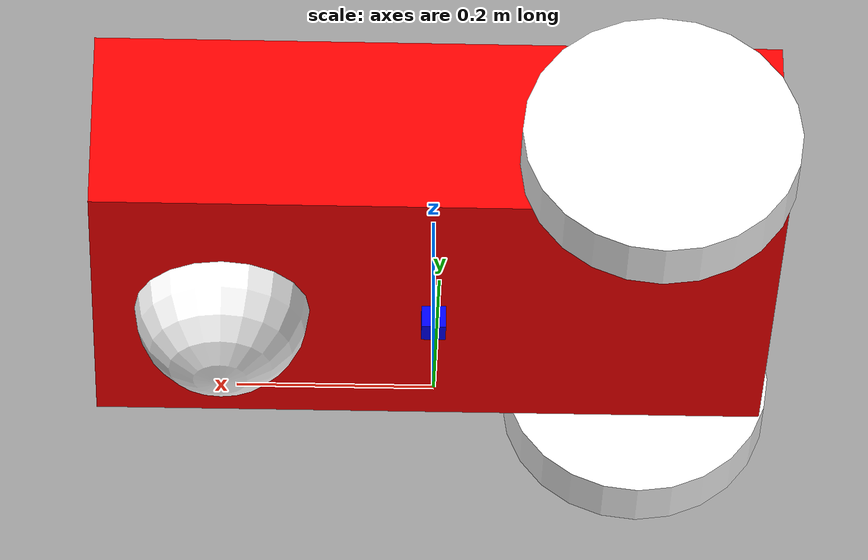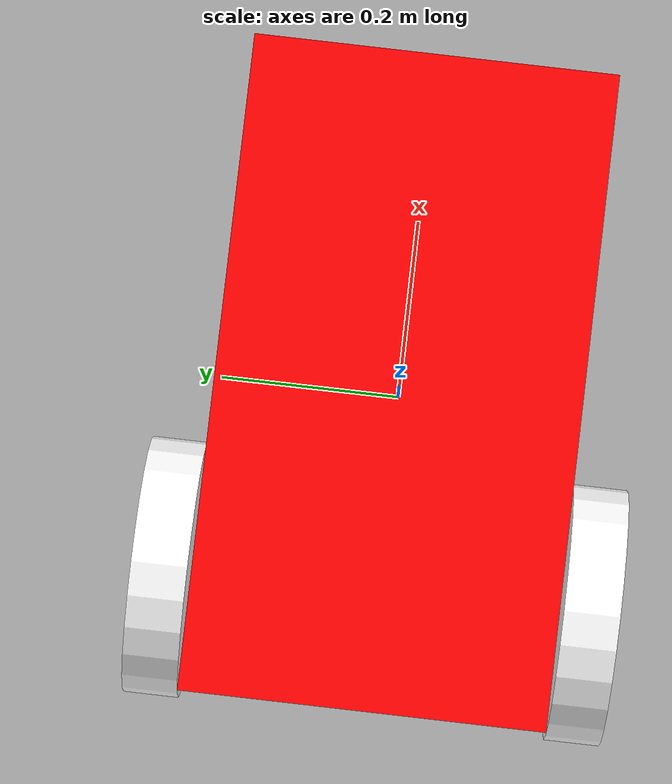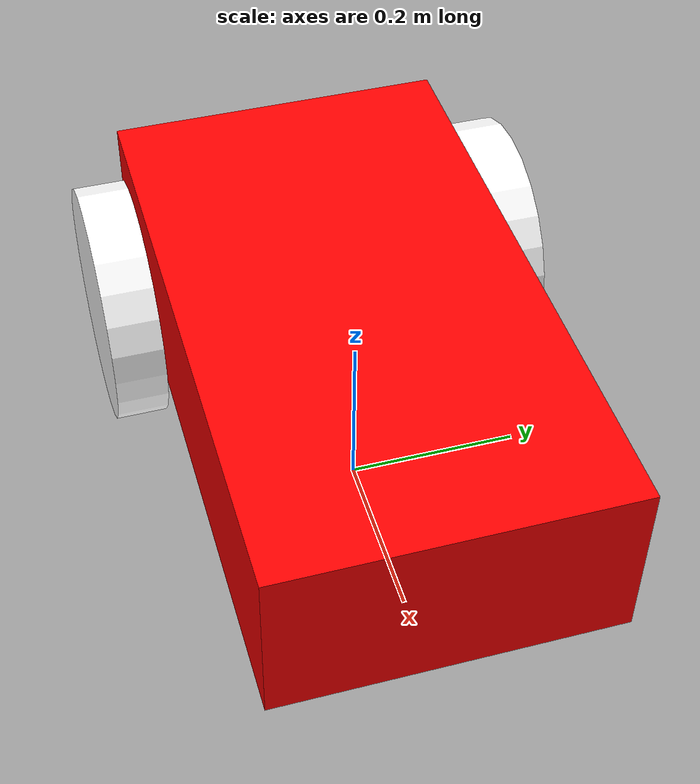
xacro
<?xml version="1.0" ?>
<robot name="isi_robot" xmlns:xacro="http://ros.org/wiki/xacro">

  <!-- ****************** ROBOT CONSTANTS *******************************  -->
  <!-- Define the size of the robot's main chassis in meters -->
  <xacro:property name="base_width" value="0.39"/>
  <xacro:property name="base_length" value="0.70"/>
  <xacro:property name="base_height" value="0.20"/>

  <!-- Define the shape of the robot's two back wheels in meters -->
  <xacro:property name="wheel_radius" value="0.14"/>
  <xacro:property name="wheel_width" value="0.06"/>

  <!-- x-axis points forward, y-axis points to left, z-axis points upwards -->
  <!-- Define the gap between the wheel and chassis along y-axis in meters -->
  <xacro:property name="wheel_ygap" value="0.035"/>

  <!-- Position the wheels along the z-axis -->
  <xacro:property name="wheel_zoff" value="0.05"/>

  <!-- Position the wheels along the x-axis -->
  <xacro:property name="wheel_xoff" value="0.221"/>

  <!-- Position the caster wheel along the x-axis -->
  <xacro:property name="caster_xoff" value="0.217"/>

  <!-- Define intertial property macros  -->
  <xacro:macro name="box_inertia" params="m w h d">
    <inertial>
      <origin xyz="0 0 0" rpy="${pi/2} 0 ${pi/2}"/>
      <mass value="${m}"/>
      <inertia ixx="${(m/12) * (h*h + d*d)}" ixy="0.0" ixz="0.0" iyy="${(m/12) * (w*w + d*d)}" iyz="0.0" izz="${(m/12) * (w*w + h*h)}"/>
    </inertial>
  </xacro:macro>

  <xacro:macro name="cylinder_inertia" params="m r h">
    <inertial>
      <origin xyz="0 0 0" rpy="${pi/2} 0 0" />
      <mass value="${m}"/>
      <inertia ixx="${(m/12) * (3*r*r + h*h)}" ixy = "0" ixz = "0" iyy="${(m/12) * (3*r*r + h*h)}" iyz = "0" izz="${(m/2) * (r*r)}"/>
    </inertial>
  </xacro:macro>

  <xacro:macro name="sphere_inertia" params="m r">
    <inertial>
      <mass value="${m}"/>
      <inertia ixx="${(2/5) * m * (r*r)}" ixy="0.0" ixz="0.0" iyy="${(2/5) * m * (r*r)}" iyz="0.0" izz="${(2/5) * m * (r*r)}"/>
    </inertial>
  </xacro:macro>

  <!-- ****************** ROBOT BASE FOOTPRINT ***************************  -->
  <!-- Define the center of the main robot chassis projected on the ground -->
  <link name="base_footprint"/>

  <!-- The base footprint of the robot is located underneath the chassis -->
  <joint name="base_joint" type="fixed">
    <parent link="base_footprint"/>
    <child link="base_link" />
    <origin xyz="0.0 0.0 ${(wheel_radius+wheel_zoff)}" rpy="0 0 0"/>
  </joint>

  <!-- ********************** ROBOT BASE *********************************  -->
  <link name="base_link">
    <visual>
      <origin xyz="0 0 0.0" rpy="0.0 0 0.0"/>
      <geometry>
        <box size="${base_length} ${base_width} ${base_height}"/>
      </geometry>
      <material name="Red">
        <color rgba="${255/255} ${0/255} ${0/255} 1.0"/>
      </material>
    </visual>

    <collision>
      <geometry>
        <box size="${base_length} ${base_width} ${base_height}"/>
      </geometry>
    </collision>

    <xacro:box_inertia m="40.0" w="${base_width}" d="${base_length}" h="${base_height}"/>

  </link>

  <!-- *********************** DRIVE WHEELS ******************************  -->

  <xacro:macro name="wheel" params="prefix x_reflect y_reflect">
    <link name="${prefix}_link">
      <visual>
        <origin xyz="0 0 0" rpy="1.5707963267949 0 0"/>
        <geometry>
            <cylinder radius="${wheel_radius}" length="${wheel_width}"/>
        </geometry>
        <material name="White">
          <color rgba="${255/255} ${255/255} ${255/255} 1.0"/>
        </material>
      </visual>

      <collision>
        <origin xyz="0 0 0" rpy="${pi/2} 0 0"/>
        <geometry>
          <cylinder radius="${wheel_radius}" length="${wheel_width}"/>
        </geometry>
      </collision>

      <xacro:cylinder_inertia m="110.5" r="${wheel_radius}" h="${wheel_width}"/>

    </link>

    <!-- Connect the wheels to the base_link at the appropriate location, and
         define a continuous joint to allow the wheels to freely rotate about
         an axis -->
    <joint name="${prefix}_joint" type="revolute">
      <parent link="base_link"/>
      <child link="${prefix}_link"/>
      <origin xyz="${x_reflect*wheel_xoff} ${y_reflect*(base_width/2+wheel_ygap)} ${-wheel_zoff}" rpy="0 0 0"/>
      <limit upper="1.79769e+308" lower="-1.79769e+308" effort="30" velocity="5.0"/>
      <axis xyz="0 1 0"/>
    </joint>
  </xacro:macro>

  <xacro:wheel prefix="drivewhl_l" x_reflect="-1" y_reflect="1" />
  <xacro:wheel prefix="drivewhl_r" x_reflect="-1" y_reflect="-1" />

  <!-- *********************** CASTER WHEEL ******************************  -->
  <!-- We add a caster wheel. It will be modeled as sphere.
       We define the wheel’s geometry, material and the joint to connect it to
       base_link at the appropriate location. -->
  <link name="front_caster">
    <visual>
      <geometry>
        <sphere radius="${(wheel_radius+wheel_zoff-(base_height/2))}"/>
      </geometry>
      <material name="White">
        <color rgba="${255/255} ${255/255} ${255/255} 1.0"/>
      </material>
    </visual>
    <collision>
      <origin xyz="0 0 0" rpy="0 0 0"/>
      <geometry>
        <sphere radius="${(wheel_radius+wheel_zoff-(base_height/2))}"/>
      </geometry>
    </collision>
    <xacro:sphere_inertia m="10.05" r="${(wheel_radius+wheel_zoff-(base_height/2))}"/>
  </link>

  <gazebo reference="front_caster">
    <mu1>0.01</mu1>
    <mu2>0.01</mu2>
  </gazebo>

  <joint name="caster_joint" type="fixed">
    <parent link="base_link"/>
    <child link="front_caster"/>
    <origin xyz="${caster_xoff} 0.0 ${-(base_height/2)}" rpy="0 0 0"/>
  </joint>

  <!-- *********************** IMU SETUP *********************************  -->
  <!-- Each sensor must be attached to a link.                              -->

  <joint name="imu_joint" type="fixed">
    <parent link="base_link"/>
    <child link="imu_link"/>
    <origin xyz="-0.10 0 0.05" rpy="0 0 0"/>
  </joint>

  <link name="imu_link"/>

  <!-- *********************** GPS SETUP **********************************  -->
  <joint name="gps_joint" type="fixed">
    <parent link="base_link"/>
    <child link="gps_link"/>
    <origin xyz="0.10 0 0.05" rpy="0 0 0"/>
  </joint>

  <link name="gps_link"/>

  <!-- *********************  LIDAR SETUP ******************************** -->
  <!-- LiDAR Link -->
  <link name="lidar_link">
  		<visual>
  			<geometry>
  				<box size="0.025 0.025 0.025"/>
  			</geometry>
  			<material name="Blue">
  				<color rgba="0 0 1 1.0"/>
  			</material>
  		</visual>
  		<collision>
  			<geometry>
  				<box size="0.025 0.025 0.025"/>
  			</geometry>
  		</collision>
  		<inertial>
  			<mass value="0.1"/>
  			<inertia ixx="0.000166667" ixy="0.0" ixz="0.0" iyy="0.000166667" iyz="0.0" izz="0.000166667"/>
  		</inertial>
  </link>

  <!-- LiDAR Joint -->
  <joint name="lidar_joint" type="fixed">
  		<parent link="base_link"/>
  		<child link="lidar_link"/>
  		<!--origin xyz="0.0 0.0 ${(-wheel_radius+wheel_zoff)}" rpy="0 1.57 0"/-->
  		<origin xyz="0.0 0.0 -0.1125" rpy="0 1.57 0"/>
  </joint>

  <gazebo reference="lidar_link">
	  <sensor type="gpu_ray" name="lidar_sensor">
		 <pose>0.0 0 0 0 0 0</pose>
		 <visualize>true</visualize>
		 <update_rate>10</update_rate>
		 <ray>
		   <scan>
		     <horizontal>
		       <samples>180</samples>
		       <resolution>1</resolution>
		       <min_angle>-1.57</min_angle>
		       <max_angle>1.57</max_angle>
		     </horizontal>
		     <vertical>
		       <samples>1</samples>
		       <resolution>1</resolution>
		       <min_angle>0</min_angle>
		       <max_angle>0</max_angle>
		     </vertical>
		   </scan>
		   <range>
		     <min>0.01</min>
		     <max>10.0</max>
		     <resolution>0.01</resolution>
		   </range>
		   <noise>
		     <type>gaussian</type>
		     <mean>0.0</mean>
		     <stddev>0.01</stddev>
		   </noise>
		 </ray>

		 <plugin filename="libignition-gazebo-sensors-system.so" name="ignition::gazebo::systems::Sensors">
		   <topicName>/lidar</topicName>
		   <frameName>lidar_link</frameName>
		 </plugin>

	  </sensor>
	</gazebo>

  <!-- *********************  Gazebo Plugin -- Diff Drive ******************************** -->
  <gazebo>
  	<plugin
  	  filename="ignition-gazebo-diff-drive-system"
  	  name="ignition::gazebo::systems::DiffDrive">
  	  <left_joint>drivewhl_l_joint</left_joint>
  	  <right_joint>drivewhl_r_joint</right_joint>
  	  <wheel_separation>${base_length}</wheel_separation>
  	  <wheel_radius>${wheel_radius}</wheel_radius>
  	  <odom_publish_frequency>1</odom_publish_frequency>
  	  <topic>/cmd_vel</topic>
  	</plugin>
  </gazebo>

  <!-- *********************  Gazebo Plugin -- Magnetic Force ******************************** -->

  <gazebo>
	<plugin name="magnetic_adhesion_plugin" filename="libmagnetic_adhesion_plugin.so"/>
  </gazebo>

</robot>
